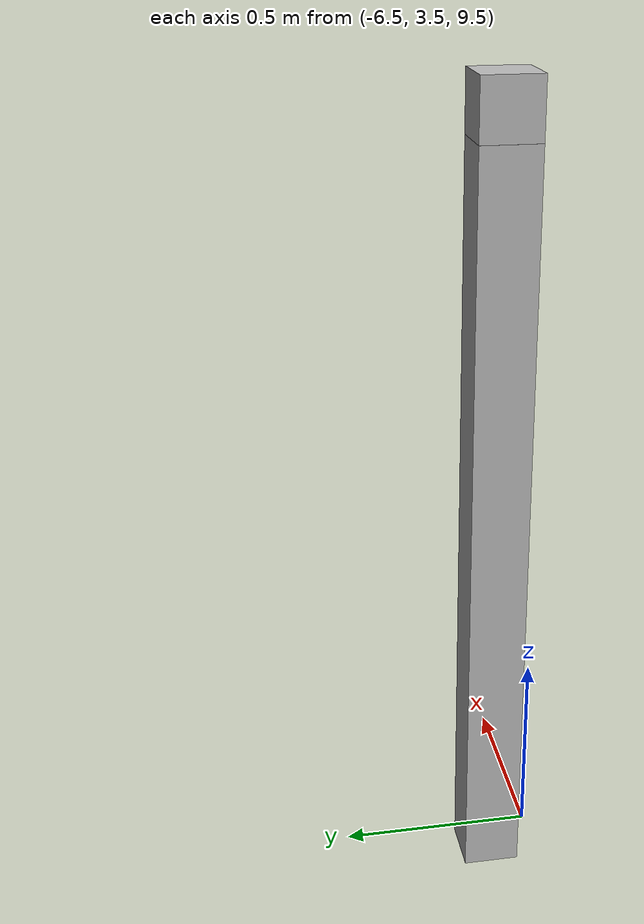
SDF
<sdf version="1.7">
 <world name="default">
  <model name="orthogonal_747_2.000.15_TS">
   <static>1</static>
   <link name="u_link_6_4_0">
    <inertial>
     <mass>1</mass>
     <inertia>
      <ixx>0.166667</ixx>
      <ixy>0</ixy>
      <ixz>0</ixz>
      <iyy>0.166667</iyy>
      <iyz>0</iyz>
      <izz>0.166667</izz>
     </inertia>
    </inertial>
    <pose>0 8.6 13.975 0 -0 0</pose>
    <visual name="visual_0">
     <laser_retro>6140</laser_retro>
     <geometry><box><size>0.15 1e-06 0.15</size></box></geometry>
     <material>
      <script><name>Gazebo/Grey</name><uri>file://media/materials/scripts/gazebo.material</uri></script>
      <shader type="pixel"><normal_map>__default__</normal_map></shader>
      <ambient>0.678 0.498 0.659 1</ambient>
      <diffuse>0.7 0.7 0.7 1</diffuse>
      <specular>0.01 0.01 0.01 1</specular>
      <emissive>0 0 0 1</emissive>
     </material>
     <pose>0 -0.075 0 0 -0 0</pose>
     <transparency>1</transparency>
    </visual>
    <visual name="visual_1">
     <laser_retro>6141</laser_retro>
     <geometry><box><size>0.15 1e-06 0.15</size></box></geometry>
     <material>
      <script><name>Gazebo/Grey</name><uri>file://media/materials/scripts/gazebo.material</uri></script>
      <shader type="pixel"><normal_map>__default__</normal_map></shader>
      <ambient>0.447 0.624 0.812 1</ambient>
      <diffuse>0.7 0.7 0.7 1</diffuse>
      <specular>0.01 0.01 0.01 1</specular>
      <emissive>0 0 0 1</emissive>
     </material>
     <pose>0 0.075 0 0 -0 0</pose>
     <transparency>1</transparency>
    </visual>
    <visual name="visual_2">
     <laser_retro>6142</laser_retro>
     <geometry><box><size>0.15 0.15 1e-06</size></box></geometry>
     <material>
      <script><name>Gazebo/Grey</name><uri>file://media/materials/scripts/gazebo.material</uri></script>
      <shader type="pixel"><normal_map>__default__</normal_map></shader>
      <ambient>0.988 0.686 0.243 1</ambient>
      <diffuse>0.7 0.7 0.7 1</diffuse>
      <specular>0.01 0.01 0.01 1</specular>
      <emissive>0 0 0 1</emissive>
     </material>
     <pose>0 0 -0.075 0 -0 0</pose>
     <transparency>1</transparency>
    </visual>
    <visual name="visual_3">
     <laser_retro>6143</laser_retro>
     <geometry><box><size>1e-06 0.15 0.15</size></box></geometry>
     <material>
      <script><name>Gazebo/Grey</name><uri>file://media/materials/scripts/gazebo.material</uri></script>
      <shader type="pixel"><normal_map>__default__</normal_map></shader>
      <ambient>0.988 0.914 0.31 1</ambient>
      <diffuse>0.7 0.7 0.7 1</diffuse>
      <specular>0.01 0.01 0.01 1</specular>
      <emissive>0 0 0 1</emissive>
     </material>
     <pose>0.075 0 0 0 -0 0</pose>
     <transparency>1</transparency>
    </visual>
    <visual name="visual_4">
     <laser_retro>6144</laser_retro>
     <geometry><box><size>0.15 0.15 1e-06</size></box></geometry>
     <material>
      <script><name>Gazebo/Grey</name><uri>file://media/materials/scripts/gazebo.material</uri></script>
      <shader type="pixel"><normal_map>__default__</normal_map></shader>
      <ambient>0.937 0.161 0.161 1</ambient>
      <diffuse>0.7 0.7 0.7 1</diffuse>
      <specular>0.01 0.01 0.01 1</specular>
      <emissive>0 0 0 1</emissive>
     </material>
     <pose>0 0 0.075 0 -0 0</pose>
     <transparency>1</transparency>
    </visual>
    <visual name="visual_5">
     <laser_retro>6145</laser_retro>
     <geometry><box><size>1e-06 0.15 0.15</size></box></geometry>
     <material>
      <script><name>Gazebo/Grey</name><uri>file://media/materials/scripts/gazebo.material</uri></script>
      <shader type="pixel"><normal_map>__default__</normal_map></shader>
      <ambient>0.541 0.886 0.204 1</ambient>
      <diffuse>0.7 0.7 0.7 1</diffuse>
      <specular>0.01 0.01 0.01 1</specular>
      <emissive>0 0 0 1</emissive>
     </material>
     <pose>-0.075 0 0 0 -0 0</pose>
     <transparency>1</transparency>
    </visual>
    <visual name="visual_texture">
     <geometry><box><size>0.149985 0.149985 0.149985</size></box></geometry>
     <material>
      <script>
       <uri>model://BASE_MODELS/simple_block_v2_textured/materials/scripts</uri>
       <uri>model://BASE_MODELS/simple_block_v2_textured/materials/textures</uri>
       <name>metal</name>
      </script>
     </material>
     <laser_retro>6146</laser_retro>
    </visual>
    <collision name="collision">
     <geometry><box><size>0.15 0.15 0.15</size></box></geometry>
     <surface>
      <friction>
       <ode><mu>1</mu><mu2>1</mu2><fdir1>0 0 0</fdir1><slip1>0</slip1><slip2>0</slip2></ode>
       <torsional>
        <coefficient>1</coefficient>
        <patch_radius>0</patch_radius>
        <surface_radius>0</surface_radius>
        <use_patch_radius>1</use_patch_radius>
        <ode><slip>0</slip></ode>
       </torsional>
      </friction>
      <bounce><restitution_coefficient>0</restitution_coefficient><threshold>1e+06</threshold></bounce>
      <contact>
       <collide_without_contact>0</collide_without_contact>
       <collide_without_contact_bitmask>1</collide_without_contact_bitmask>
       <collide_bitmask>1</collide_bitmask>
       <ode>
        <soft_cfm>0</soft_cfm>
        <soft_erp>0.2</soft_erp>
        <kp>1e+13</kp>
        <kd>1</kd>
        <max_vel>0.01</max_vel>
        <min_depth>0</min_depth>
       </ode>
       <bullet>
        <split_impulse>1</split_impulse>
        <split_impulse_penetration_threshold>-0.01</split_impulse_penetration_threshold>
        <soft_cfm>0</soft_cfm>
        <soft_erp>0.2</soft_erp>
        <kp>1e+13</kp>
        <kd>1</kd>
       </bullet>
      </contact>
     </surface>
    </collision>
   </link>
   <link name="z_link_6_4_0">
    <inertial>
     <mass>1</mass>
     <inertia>
      <ixx>0.166667</ixx>
      <ixy>0</ixy>
      <ixz>0</ixz>
      <iyy>0.166667</iyy>
      <iyz>0</iyz>
      <izz>0.166667</izz>
     </inertia>
    </inertial>
    <pose>0 8.6 12.9 0 -0 0</pose>
    <visual name="visual_0">
     <laser_retro>6147</laser_retro>
     <geometry><box><size>0.15 1e-06 2</size></box></geometry>
     <material>
      <script><name>Gazebo/Grey</name><uri>file://media/materials/scripts/gazebo.material</uri></script>
      <shader type="pixel"><normal_map>__default__</normal_map></shader>
      <ambient>0.678 0.498 0.659 1</ambient>
      <diffuse>0.7 0.7 0.7 1</diffuse>
      <specular>0.01 0.01 0.01 1</specular>
      <emissive>0 0 0 1</emissive>
     </material>
     <pose>0 -0.075 0 0 -0 0</pose>
     <transparency>1</transparency>
    </visual>
    <visual name="visual_1">
     <laser_retro>6148</laser_retro>
     <geometry><box><size>0.15 1e-06 2</size></box></geometry>
     <material>
      <script><name>Gazebo/Grey</name><uri>file://media/materials/scripts/gazebo.material</uri></script>
      <shader type="pixel"><normal_map>__default__</normal_map></shader>
      <ambient>0.447 0.624 0.812 1</ambient>
      <diffuse>0.7 0.7 0.7 1</diffuse>
      <specular>0.01 0.01 0.01 1</specular>
      <emissive>0 0 0 1</emissive>
     </material>
     <pose>0 0.075 0 0 -0 0</pose>
     <transparency>1</transparency>
    </visual>
    <visual name="visual_2">
     <laser_retro>6149</laser_retro>
     <geometry><box><size>0.15 0.15 1e-06</size></box></geometry>
     <material>
      <script><name>Gazebo/Grey</name><uri>file://media/materials/scripts/gazebo.material</uri></script>
      <shader type="pixel"><normal_map>__default__</normal_map></shader>
      <ambient>0.988 0.686 0.243 1</ambient>
      <diffuse>0.7 0.7 0.7 1</diffuse>
      <specular>0.01 0.01 0.01 1</specular>
      <emissive>0 0 0 1</emissive>
     </material>
     <pose>0 0 -1 0 -0 0</pose>
     <transparency>1</transparency>
    </visual>
    <visual name="visual_3">
     <laser_retro>6150</laser_retro>
     <geometry><box><size>1e-06 0.15 2</size></box></geometry>
     <material>
      <script><name>Gazebo/Grey</name><uri>file://media/materials/scripts/gazebo.material</uri></script>
      <shader type="pixel"><normal_map>__default__</normal_map></shader>
      <ambient>0.988 0.914 0.31 1</ambient>
      <diffuse>0.7 0.7 0.7 1</diffuse>
      <specular>0.01 0.01 0.01 1</specular>
      <emissive>0 0 0 1</emissive>
     </material>
     <pose>0.075 0 0 0 -0 0</pose>
     <transparency>1</transparency>
    </visual>
    <visual name="visual_4">
     <laser_retro>6151</laser_retro>
     <geometry><box><size>0.15 0.15 1e-06</size></box></geometry>
     <material>
      <script><name>Gazebo/Grey</name><uri>file://media/materials/scripts/gazebo.material</uri></script>
      <shader type="pixel"><normal_map>__default__</normal_map></shader>
      <ambient>0.937 0.161 0.161 1</ambient>
      <diffuse>0.7 0.7 0.7 1</diffuse>
      <specular>0.01 0.01 0.01 1</specular>
      <emissive>0 0 0 1</emissive>
     </material>
     <pose>0 0 1 0 -0 0</pose>
     <transparency>1</transparency>
    </visual>
    <visual name="visual_5">
     <laser_retro>6152</laser_retro>
     <geometry><box><size>1e-06 0.15 2</size></box></geometry>
     <material>
      <script><name>Gazebo/Grey</name><uri>file://media/materials/scripts/gazebo.material</uri></script>
      <shader type="pixel"><normal_map>__default__</normal_map></shader>
      <ambient>0.541 0.886 0.204 1</ambient>
      <diffuse>0.7 0.7 0.7 1</diffuse>
      <specular>0.01 0.01 0.01 1</specular>
      <emissive>0 0 0 1</emissive>
     </material>
     <pose>-0.075 0 0 0 -0 0</pose>
     <transparency>1</transparency>
    </visual>
    <visual name="visual_texture">
     <geometry><box><size>0.149985 0.149985 1.9998</size></box></geometry>
     <material>
      <script>
       <uri>model://BASE_MODELS/simple_block_v2_textured/materials/scripts</uri>
       <uri>model://BASE_MODELS/simple_block_v2_textured/materials/textures</uri>
       <name>metal</name>
      </script>
     </material>
     <laser_retro>6153</laser_retro>
    </visual>
    <collision name="collision">
     <geometry><box><size>0.15 0.15 2</size></box></geometry>
     <surface>
      <friction>
       <ode><mu>1</mu><mu2>1</mu2><fdir1>0 0 0</fdir1><slip1>0</slip1><slip2>0</slip2></ode>
       <torsional>
        <coefficient>1</coefficient>
        <patch_radius>0</patch_radius>
        <surface_radius>0</surface_radius>
        <use_patch_radius>1</use_patch_radius>
        <ode><slip>0</slip></ode>
       </torsional>
      </friction>
      <bounce><restitution_coefficient>0</restitution_coefficient><threshold>1e+06</threshold></bounce>
      <contact>
       <collide_without_contact>0</collide_without_contact>
       <collide_without_contact_bitmask>1</collide_without_contact_bitmask>
       <collide_bitmask>1</collide_bitmask>
       <ode>
        <soft_cfm>0</soft_cfm>
        <soft_erp>0.2</soft_erp>
        <kp>1e+13</kp>
        <kd>1</kd>
        <max_vel>0.01</max_vel>
        <min_depth>0</min_depth>
       </ode>
       <bullet>
        <split_impulse>1</split_impulse>
        <split_impulse_penetration_threshold>-0.01</split_impulse_penetration_threshold>
        <soft_cfm>0</soft_cfm>
        <soft_erp>0.2</soft_erp>
        <kp>1e+13</kp>
        <kd>1</kd>
       </bullet>
      </contact>
     </surface>
    </collision>
   </link>
   <pose>-6.47624 -5 -2.5 0 -0 0</pose>
  </model>
 </world>
</sdf>
